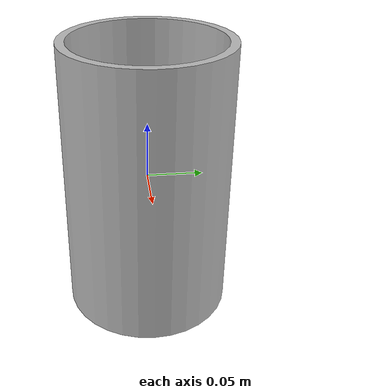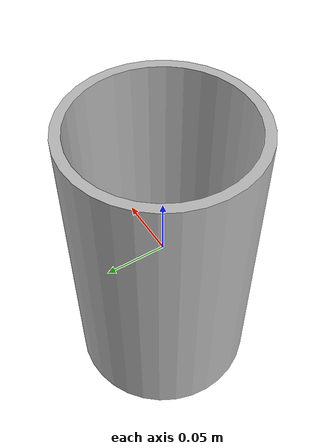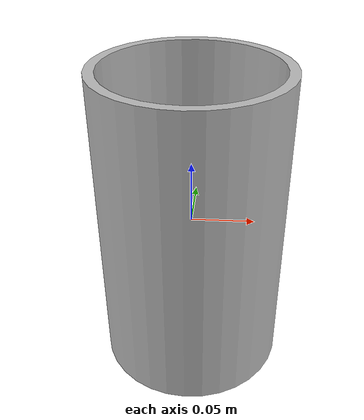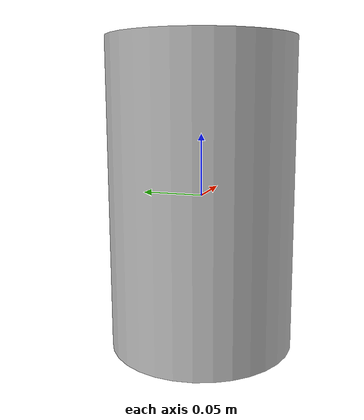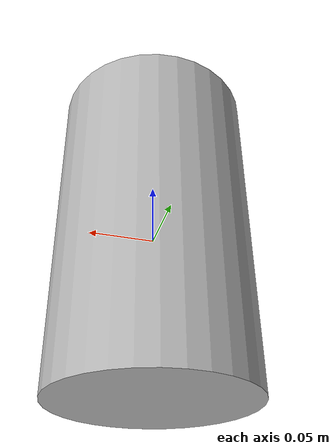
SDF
<?xml version='1.0'?>
<sdf version='1.7'>
    <model name='Other_Dustbin'>
        <static>false</static>
        <pose>0 0 0 0 0 0</pose>
        <link name="other_dustbin">
        <collision name="other_dustbin_collision">
            <geometry>
            <mesh>
                <uri>$(find artpark_gazebo)/models/other_dustbin.dae</uri>
            </mesh>
            </geometry>
        </collision>
        <visual name="other_dustbin_visual">
            <geometry>
            <mesh>
                <uri>$(find artpark_gazebo)/models/other_dustbin.dae</uri>
            </mesh>
            </geometry>
        </visual>
        </link>
    </model>
</sdf>
